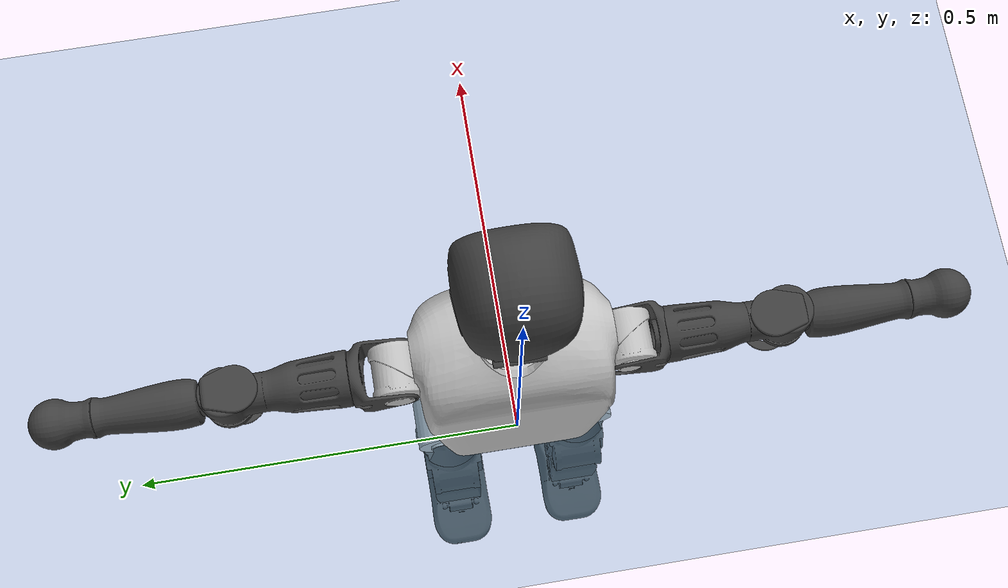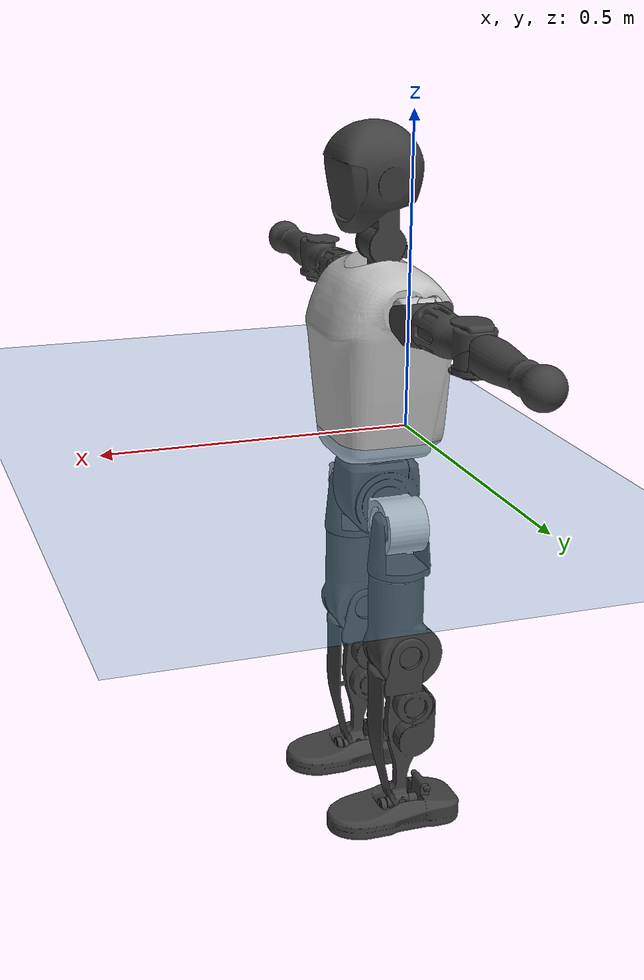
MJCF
<mujoco model="T1">
  <compiler angle="radian" assetdir="assets" balanceinertia="true" inertiafromgeom="false"/>

  <option timestep="0.005" density="1.2" viscosity="2e-05"/>

  <size nkey="1"/>

  <visual>
    <quality shadowsize="8192"/>
    <map shadowclip="0.5"/>
  </visual>

  <default>
    <default class="/">
      <joint armature="0.01" damping="0.01" frictionloss="0.1"/>
      <geom contype="0" conaffinity="0" group="1" solref="-1000 -80"/>
      <site size="0.01 0.005 0.005" group="5"/>
      <general forcelimited="true" biastype="affine" gainprm="25" biasprm="0 -25 -0.6"/>
      <default class="t1">
        <geom rgba="0.25 0.25 0.25 1"/>
        <default class="visual">
          <geom type="mesh" group="2"/>
        </default>
        <default class="collision">
          <geom group="3"/>
        </default>
        <default class="foot">
          <geom size="0.1115 0.05 0.015" type="box" condim="6" group="4" priority="1" solimp="0.015 1 0.015"/>
        </default>
        <default class="reward_collision_sphere">
          <geom group="5" rgba="1 0 0 1"/>
        </default>
      </default>
    </default>
  </default>

  <asset>
    <texture type="skybox" colorspace="auto" name="//unnamed_texture_0" builtin="gradient" rgb1="0.95 0.95 0.95" rgb2="0.95 0.95 0.95" width="100" height="600"/>
    <texture type="2d" colorspace="auto" name="texplane" builtin="checker" rgb1="0.345 0.575 0.748" rgb2="0.345 0.575 0.748" markrgb="1 1 1" width="512" height="512"/>
    <material name="MatPlane" class="/" texture="texplane" texuniform="true" texrepeat="2 2" specular="0.9"/>
    <mesh name="Trunk" class="/" file="Trunk.stl"/>
    <mesh name="H1" class="/" file="H1.stl"/>
    <mesh name="H2" class="/" file="H2.stl"/>
    <mesh name="AL1" class="/" file="AL1.stl"/>
    <mesh name="AL2" class="/" file="AL2.stl"/>
    <mesh name="AL3" class="/" file="AL3.stl"/>
    <mesh name="left_hand_link" class="/" file="left_hand_link.stl"/>
    <mesh name="AR1" class="/" file="AR1.stl"/>
    <mesh name="AR2" class="/" file="AR2.stl"/>
    <mesh name="AR3" class="/" file="AR3.stl"/>
    <mesh name="right_hand_link" class="/" file="right_hand_link.stl"/>
    <mesh name="Waist" class="/" file="Waist.stl"/>
    <mesh name="Hip_Pitch_Left" class="/" file="Hip_Pitch_Left.stl"/>
    <mesh name="Hip_Roll_Left" class="/" file="Hip_Roll_Left.stl"/>
    <mesh name="Hip_Yaw_Left" class="/" file="Hip_Yaw_Left.stl"/>
    <mesh name="Shank_Left" class="/" file="Shank_Left.stl"/>
    <mesh name="Ankle_Cross_Left" class="/" file="Ankle_Cross_Left.stl"/>
    <mesh name="left_foot_link" class="/" file="left_foot_link.stl"/>
    <mesh name="Hip_Pitch_Right" class="/" file="Hip_Pitch_Right.stl"/>
    <mesh name="Hip_Roll_Right" class="/" file="Hip_Roll_Right.stl"/>
    <mesh name="Hip_Yaw_Right" class="/" file="Hip_Yaw_Right.stl"/>
    <mesh name="Shank_Right" class="/" file="Shank_Right.stl"/>
    <mesh name="Ankle_Cross_Right" class="/" file="Ankle_Cross_Right.stl"/>
    <mesh name="right_foot_link" class="/" file="right_foot_link.stl"/>
  </asset>

  <worldbody>
    <geom name="floor" class="/" size="100 100 0.125" type="plane" group="0" material="MatPlane"/>
    <light name="toplight_shadow" class="/" pos="0 0 5" dir="0.0990148 0.0990148 -0.990148" type="directional" ambient="0.04 0.04 0.04" diffuse="0.55 0.55 0.55" specular="0.12 0.12 0.12"/>
    <light name="toplight_fill" class="/" pos="0 0 5" dir="0.0990148 0.0990148 -0.990148" type="directional" castshadow="false" ambient="0.04 0.04 0.04" diffuse="0.3 0.3 0.3" specular="0.08 0.08 0.08"/>
    <body name="trunk" childclass="t1" pos="-0.000502188 -6.29285e-07 0.00212312" quat="1 9.67319e-05 9.15298e-06 3.84132e-05">
      <inertial pos="0.0440289 -0.000688193 0.102689" quat="0.999956 0.00121178 -0.00930723 2.5829e-05" mass="7.74706" diaginertia="0.0287069 0.0408061 0.0453458"/>
      <joint name="//unnamed_joint_0" type="free" armature="0" damping="0" frictionloss="0"/>
      <geom name="//unnamed_geom_1" class="visual" rgba="0.76 0.76 0.76 1" mesh="Trunk"/>
      <geom name="//unnamed_geom_2" class="collision" size="0.0662558 0.0883411 0.132512" pos="0.0478724 0 0.116314" type="box"/>
      <geom name="//unnamed_geom_3" class="reward_collision_sphere" size="0.101592" pos="0.0478724 0 0.096928"/>
      <geom name="//unnamed_geom_4" class="reward_collision_sphere" size="0.0132512" pos="0.0478724 0.0750617 0"/>
      <geom name="//unnamed_geom_5" class="reward_collision_sphere" size="0.0132512" pos="0.0478724 -0.0750617 0"/>
      <geom name="//unnamed_geom_6" class="reward_collision_sphere" size="0.0132512" pos="0.0478724 0.0944894 0.17447"/>
      <geom name="//unnamed_geom_7" class="reward_collision_sphere" size="0.0132512" pos="0.0478724 -0.0944894 0.17447"/>
      <site name="imu" pos="0.0131871 -0.0124479 -0.00160528" size="0.00883411"/>
      <camera name="track" pos="0 -1.76616 0" quat="0.707107 0.707107 0 0" mode="trackcom"/>
      <camera name="ego_camera" pos="0.0973406 0 0.407098" quat="-0.5 -0.5 0.5 0.5"/>
      <body name="H1" pos="0.0493274 -0.0013413 0.235738" quat="1 -0.000218591 0.00013189 -1.20972e-05">
        <inertial pos="-0.000293978 -0.000439236 0.0566287" quat="0.761294 -0.0135164 -0.000985173 0.648265" mass="0.308907" diaginertia="8.09795e-05 0.000119989 0.000132372"/>
        <joint name="AAHead_yaw" pos="0 0 0" axis="-0.00022391 0.000596856 1" stiffness="0.0116548" range="-1.57769 1.59133" armature="0.00843583" damping="0.00478029" frictionloss="0.0928809"/>
        <geom name="//unnamed_geom_8" class="visual" mesh="H1"/>
        <body name="H2" pos="-0.000354659 -0.00272471 0.0601668" quat="1 -0.000106173 9.68787e-05 5.43332e-05">
          <inertial pos="0.00811066 0.00340546 0.0967137" quat="0.98816 0.10618 -0.0784015 -0.0782187" mass="0.452553" diaginertia="0.000657945 0.00105221 0.00149687"/>
          <joint name="Head_pitch" pos="0 0 0" axis="0.00502111 -0.999987 0.00126339" range="-1.21608 0.377768" armature="0.00778701" damping="0.00190046" frictionloss="0.0890174"/>
          <geom name="//unnamed_geom_9" class="visual" mesh="H2"/>
          <geom name="//unnamed_geom_10" class="collision" size="0.0706729" pos="0.00797874 0 0.106621"/>
          <geom name="//unnamed_geom_11" class="reward_collision_sphere" size="0.079507" pos="0.0159575 0 0.096928"/>
        </body>
      </body>
      <body name="AL1" pos="0.0461961 0.0952623 0.211718" quat="1 -3.90666e-05 0.000517092 0.000144758">
        <inertial pos="-0.000757524 0.0395853 0.00251475" quat="0.503777 0.494236 -0.505247 0.496655" mass="0.370798" diaginertia="0.000447261 0.000694827 0.000250136"/>
        <joint name="Left_Shoulder_Pitch" pos="0 0 0" axis="-0.00581536 0.999981 0.00213563" range="-3.35982 1.19191" armature="0.00838713" damping="0.00720361" frictionloss="0.0886423"/>
        <geom name="//unnamed_geom_12" class="visual" rgba="0.76 0.76 0.76 1" mesh="AL1"/>
        <body name="AL2" pos="0.000146018 0.0451746 -0.00132623" quat="0.999999 -0.00015237 0.000577579 0.00130953">
          <inertial pos="0.00268868 0.0328164 -0.00211772" quat="0.489596 0.508936 -0.488635 0.512363" mass="0.117612" diaginertia="0.000133534 0.000196529 0.000157861"/>
          <joint name="Left_Shoulder_Roll" pos="0 0 0" axis="-0.999994 0.00163976 0.00320047" range="-1.59953 1.75087" armature="0.00897677" damping="0" frictionloss="0.0912147"/>
          <geom name="//unnamed_geom_13" class="visual" mesh="AL2"/>
          <body name="AL3" pos="0.00209893 0.0566617 0.00124168" quat="0.999999 0.00117906 1.4484e-05 -6.77441e-05">
            <inertial pos="-0.000770282 0.0755847 -9.81039e-06" quat="0.709849 0.70428 0.00725001 -0.00718077" mass="0.726946" diaginertia="0.00427777 0.00714249 0.000546904"/>
            <joint name="Left_Elbow_Pitch" pos="0 0 0" axis="-0.00238299 -0.999997 -0.00058383" range="-2.27501 2.27675" armature="0.00910673" damping="0.0121273" frictionloss="0.0895934"/>
            <geom name="//unnamed_geom_14" class="visual" mesh="AL3"/>
            <geom name="//unnamed_geom_15" class="collision" size="0.0265023 0.0662558" pos="0 0.0441539 0" quat="0.707105 0.707108 0 0" type="cylinder"/>
            <geom name="//unnamed_geom_16" class="reward_collision_sphere" size="0.0318028"/>
            <body name="left_hand_link" pos="0.000202154 0.13294 0.00243931" quat="0.999999 -8.9774e-05 -0.000703683 -0.00111463">
              <inertial pos="-0.000349511 0.0968481 -0.00199756" quat="0.715628 0.698454 -0.00380218 -0.00487028" mass="0.217604" diaginertia="0.00256523 0.00425195 0.000177445"/>
              <joint name="Left_Elbow_Yaw" pos="0 0 0" axis="-0.0148728 0.00124252 0.999889" range="-2.44033 0.0391824" armature="0.0089919" damping="0.00463639" frictionloss="0.0999687"/>
              <geom name="//unnamed_geom_17" class="visual" mesh="left_hand_link"/>
              <geom name="//unnamed_geom_18" class="collision" size="0.0265023 0.0772984" pos="0 0.1148 0" quat="0.707105 0.707108 0 0" type="cylinder"/>
              <geom name="//unnamed_geom_19" class="reward_collision_sphere" size="0.0441705"/>
              <geom name="//unnamed_geom_20" class="reward_collision_sphere" size="0.0309194" pos="0 0.0971386 0"/>
              <geom name="//unnamed_geom_21" class="reward_collision_sphere" size="0.0309194" pos="0 0.189862 0"/>
            </body>
          </body>
        </body>
      </body>
      <body name="AR1" pos="0.0431609 -0.0909579 0.2118" quat="1 0.000267328 0.000459258 -0.000375954">
        <inertial pos="-0.000701464 -0.0389368 -0.000755014" quat="0.502814 0.496676 -0.504272 0.496186" mass="0.366616" diaginertia="0.000445491 0.000704417 0.000248969"/>
        <joint name="Right_Shoulder_Pitch" pos="0 0 0" axis="0.00158333 -0.999999 0.000560441" stiffness="0.0162503" range="-1.17493 3.32405" armature="0.00858757" damping="0.019618" frictionloss="0.0892133"/>
        <geom name="//unnamed_geom_22" class="visual" rgba="0.76 0.76 0.76 1" mesh="AR1"/>
        <body name="AR2" pos="-0.00282352 -0.0385061 0.000598432" quat="1 3.17778e-05 6.85127e-05 -0.000340589">
          <inertial pos="0.00184421 -0.0339522 -0.00130341" quat="0.511738 0.49055 -0.51224 0.484866" mass="0.10876" diaginertia="0.000124777 0.000178322 0.000152143"/>
          <joint name="Right_Shoulder_Roll" pos="0 0 0" axis="-0.999987 0.00362933 0.00360052" stiffness="0.00814326" range="-1.7308 1.5193" armature="0.00901499" damping="0.00469407" frictionloss="0.0770061"/>
          <geom name="//unnamed_geom_23" class="visual" mesh="AR2"/>
          <body name="AR3" pos="-0.000654633 -0.0507999 0.00220326" quat="1 9.11828e-05 -3.11965e-05 -4.28382e-05">
            <inertial pos="-0.000198118 -0.0743019 -0.000719639" quat="0.70917 0.704921 0.00847036 0.00962353" mass="0.697119" diaginertia="0.00412172 0.00695959 0.000536338"/>
            <joint name="Right_Elbow_Pitch" pos="0 0 0" axis="0.000759204 1 0.000419582" stiffness="0.0116945" range="-2.26905 2.27051" armature="0.00917996" damping="0.0121452" frictionloss="0.0999501"/>
            <geom name="//unnamed_geom_24" class="visual" mesh="AR3"/>
            <geom name="//unnamed_geom_25" class="collision" size="0.0265023 0.0662558" pos="0 -0.0441539 0" quat="0.707105 0.707108 0 0" type="cylinder"/>
            <geom name="//unnamed_geom_26" class="reward_collision_sphere" size="0.0318028"/>
            <body name="right_hand_link" pos="-0.00275942 -0.129063 -0.00142243" quat="1 0.000383743 1.40976e-05 7.5913e-05">
              <inertial pos="-0.00113344 -0.0969392 0.00333047" quat="0.712583 0.701531 -0.00265389 -0.0085611" mass="0.215923" diaginertia="0.00250928 0.00423859 0.000177559"/>
              <joint name="Right_Elbow_Yaw" pos="0 0 0" axis="-0.00130646 -8.55578e-05 0.999999" stiffness="0.00223116" range="-0.0445409 2.41849" armature="0.0101281" damping="0.00744945" frictionloss="0.088285"/>
              <geom name="//unnamed_geom_27" class="visual" mesh="right_hand_link"/>
              <geom name="//unnamed_geom_28" class="collision" size="0.0265023 0.0772984" pos="0 -0.1148 0" quat="0.707105 0.707108 0 0" type="cylinder"/>
              <geom name="//unnamed_geom_29" class="reward_collision_sphere" size="0.0441705"/>
              <geom name="//unnamed_geom_30" class="reward_collision_sphere" size="0.0309194" pos="0 -0.0971386 0"/>
              <geom name="//unnamed_geom_31" class="reward_collision_sphere" size="0.0309194" pos="0 -0.189862 0"/>
            </body>
          </body>
        </body>
      </body>
      <body name="Waist" pos="0.0500873 -0.0017158 -0.113913" quat="1 -9.47006e-05 1.03295e-05 -5.09358e-05">
        <inertial pos="0.00397339 -0.000771133 0.00652453" quat="0.983596 0.000282832 -0.180365 0.00260695" mass="1.76182" diaginertia="0.00169005 0.0026786 0.00390948"/>
        <joint name="Waist" pos="0 0 0" axis="-0.000395687 -0.00446125 0.99999" range="-1.51808 1.56587" armature="0.00787762" damping="0.0109232" frictionloss="0.089015"/>
        <geom name="//unnamed_geom_32" class="visual" mesh="Waist"/>
        <body name="Hip_Pitch_Left" pos="-0.00183064 0.0953159 -0.000666359" quat="0.999999 0.000673001 0.000458389 0.00090595">
          <inertial pos="-1.39996e-05 -0.00402161 -0.0174672" quat="0.975234 0.220711 0.0141576 0.00240782" mass="0.701582" diaginertia="0.000576831 0.000796565 0.00105242"/>
          <joint name="Left_Hip_Pitch" pos="0 0 0" axis="-0.000830137 0.999998 -0.00174837" stiffness="0.00716191" range="-1.7935 1.59929" armature="0.00885524" damping="0.0103666" frictionloss="0.0886123"/>
          <geom name="//unnamed_geom_33" class="visual" rgba="0.76 0.76 0.76 1" mesh="Hip_Pitch_Left"/>
          <body name="Hip_Roll_Left" pos="0.000213921 0.000110317 -0.0206103" quat="1 0.000611457 0.000772332 -7.34984e-05">
            <inertial pos="0.00120835 2.77207e-05 -0.0510009" quat="0.707864 -0.00464985 -0.00675869 0.706301" mass="0.267633" diaginertia="0.000564089 0.000794056 0.000429608"/>
            <joint name="Left_Hip_Roll" pos="0 0 0" axis="-1 0.000624701 0.000382469" range="-1.5883 0.220095" armature="0.00887073" damping="0.0120963" frictionloss="0.0977727"/>
            <geom name="//unnamed_geom_34" class="visual" mesh="Hip_Roll_Left"/>
            <geom name="//unnamed_geom_35" class="reward_collision_sphere" size="0.0485876"/>
            <body name="Hip_Yaw_Left" pos="0.00130375 -0.000858911 -0.081179" quat="1 0.000370544 -0.000292704 -0.000190529">
              <inertial pos="-0.00434216 -0.000740907 -0.0874784" quat="0.70514 -0.0388198 -0.0343212 0.707172" mass="1.48827" diaginertia="0.00825551 0.0131356 0.00223182"/>
              <joint name="Left_Hip_Yaw" pos="0 0 0" axis="-0.00747785 0.00654742 -0.999951" range="-0.998789 0.989248" armature="0.00885657" damping="0.0155931" frictionloss="0.0884086"/>
              <geom name="//unnamed_geom_36" class="visual" mesh="Hip_Yaw_Left"/>
              <geom name="//unnamed_geom_37" class="collision" size="0.0441705 0.0706729" type="cylinder"/>
              <body name="Shank_Left" pos="-0.0106916 0.000401918 -0.130846" quat="1 -4.54329e-05 0.000160412 -0.000268964">
                <inertial pos="-0.00535233 1.2679e-05 -0.12022" quat="0.997264 0.00630624 -0.0173512 0.0715838" mass="1.19515" diaginertia="0.0112012 0.0189866 0.00160742"/>
                <joint name="Left_Knee_Pitch" pos="0 0 0" axis="-0.00155132 0.999999 -9.36436e-05" range="-0.00997105 2.3324" armature="0.00849027" damping="0.0122347" frictionloss="0.0990324"/>
                <geom name="//unnamed_geom_38" class="visual" mesh="Shank_Left"/>
                <geom name="//unnamed_geom_39" class="collision" size="0.0441705 0.0662558" pos="0 0 -0.116314" type="cylinder"/>
                <geom name="//unnamed_geom_40" class="reward_collision_sphere" size="0.0574217"/>
                <body name="Ankle_Cross_Left" pos="-0.00115803 -0.000338024 -0.273038" quat="1 0.000375192 0.000284426 6.20147e-05">
                  <inertial pos="-0.00228791 0.000595093 -0.0104315" quat="0.440741 0.551211 0.551161 0.445124" mass="0.0514397" diaginertia="9.97131e-06 1.39472e-05 9.89616e-06"/>
                  <joint name="Left_Ankle_Pitch" pos="0 0 0" axis="0.00321071 0.999993 0.00208203" range="-0.920649 0.367818" armature="0.00858811" damping="0.00685732" frictionloss="0.099304"/>
                  <geom name="//unnamed_geom_41" class="visual" mesh="Ankle_Cross_Left"/>
                  <body name="left_foot_link" pos="0.00120247 6.87731e-05 -0.0150961" quat="1 -0.000216455 7.46232e-05 -0.000156429">
                    <inertial pos="0.00046105 -0.00257657 -0.00980499" quat="0.00109759 0.619434 -0.00176844 0.785046" mass="0.470417" diaginertia="0.000888764 0.00128004 0.0018497"/>
                    <joint name="Left_Ankle_Roll" pos="0 0 0" axis="-1 0.000407298 -4.96427e-06" range="-0.467328 0.447525" armature="0.00897089" damping="0.0130686" frictionloss="0.087018"/>
                    <geom name="//unnamed_geom_42" class="visual" mesh="left_foot_link"/>
                    <geom name="left_foot" class="foot" size="0.100954 0.0468621 0.0139564" pos="0.00797874 0 -0.0145392"/>
                    <geom name="//unnamed_geom_44" class="reward_collision_sphere" size="0.0459374" pos="0.00797874 0 -0.0145392"/>
                    <geom name="//unnamed_geom_45" class="reward_collision_sphere" size="0.0265023" pos="0.075798 -0.0203108 -0.0145392"/>
                    <geom name="//unnamed_geom_46" class="reward_collision_sphere" size="0.0265023" pos="-0.0558512 -0.0203108 -0.0145392"/>
                    <site name="left_foot" class="foot" pos="0.00797874 0 -0.0145392" size="0.00883411"/>
                  </body>
                </body>
              </body>
            </body>
          </body>
        </body>
        <body name="Hip_Pitch_Right" pos="0.00181278 -0.0933396 0.00178592" quat="1 0.000277095 -0.000646361 0.000361963">
          <inertial pos="0.000373255 0.00577081 -0.0146207" quat="0.971941 -0.234454 0.0125472 -0.0142719" mass="0.695055" diaginertia="0.000576834 0.000774714 0.00108309"/>
          <joint name="Right_Hip_Pitch" pos="0 0 0" axis="-0.00339484 -0.999957 -0.00866119" range="-1.57186 1.80398" armature="0.00979259" damping="0.012779" frictionloss="0.0918157"/>
          <geom name="//unnamed_geom_47" class="visual" rgba="0.76 0.76 0.76 1" mesh="Hip_Pitch_Right"/>
          <body name="Hip_Roll_Right" pos="0.00119602 -7.99425e-05 -0.0183459" quat="0.999999 -0.00140265 -0.0002075 -3.21978e-05">
            <inertial pos="0.00392333 -0.00082323 -0.0534898" quat="0.711191 -0.0022112 0.00229037 0.702992" mass="0.259278" diaginertia="0.000539021 0.000785154 0.000430669"/>
            <joint name="Right_Hip_Roll" pos="0 0 0" axis="-0.999983 0.0058339 -0.000716511" stiffness="0.00313728" range="-0.208144 1.61574" armature="0.0088661" damping="0.00336479" frictionloss="0.0887894"/>
            <geom name="//unnamed_geom_48" class="visual" mesh="Hip_Roll_Right"/>
            <geom name="//unnamed_geom_49" class="reward_collision_sphere" size="0.0485876"/>
            <body name="Hip_Yaw_Right" pos="0.000742728 -0.00186798 -0.0788096" quat="0.999999 -0.000575758 -0.00125055 -0.000598796">
              <inertial pos="-0.00398479 0.000605009 -0.0873329" quat="0.715911 -0.0365151 -0.0382551 0.696186" mass="1.53351" diaginertia="0.00886785 0.0144893 0.00229996"/>
              <joint name="Right_Hip_Yaw" pos="0 0 0" axis="0.000668285 -0.00173184 -0.999998" range="-1.01504 0.955108" armature="0.00891147" damping="0.0115548" frictionloss="0.0769974"/>
              <geom name="//unnamed_geom_50" class="visual" mesh="Hip_Yaw_Right"/>
              <geom name="//unnamed_geom_51" class="collision" size="0.0441705 0.0706729" type="cylinder"/>
              <body name="Shank_Right" pos="-0.0133532 0.00105266 -0.130486" quat="0.999999 -0.000609762 -0.000734197 0.000687985">
                <inertial pos="-0.00234287 0.00056091 -0.117757" quat="0.999273 0.000883038 -0.0245459 -0.0291674" mass="1.28644" diaginertia="0.0114402 0.0183606 0.00165395"/>
                <joint name="Right_Knee_Pitch" pos="0 0 0" axis="-0.00334612 -0.999994 0.0012455" stiffness="0.00262771" range="-2.31806 0.00551828" armature="0.00888943" damping="0.0137362" frictionloss="0.0880191"/>
                <geom name="//unnamed_geom_52" class="visual" mesh="Shank_Right"/>
                <geom name="//unnamed_geom_53" class="collision" size="0.0441705 0.0662558" pos="0 0 -0.116314" type="cylinder"/>
                <geom name="//unnamed_geom_54" class="reward_collision_sphere" size="0.0574217"/>
                <body name="Ankle_Cross_Right" pos="0.000771492 0.000170851 -0.272915" quat="0.999999 -0.000741067 -0.00086078 -0.000608259">
                  <inertial pos="-0.00301775 -0.000264956 -0.00720054" quat="0.443616 0.550499 0.551184 0.443116" mass="0.0476971" diaginertia="9.17443e-06 1.35166e-05 9.54724e-06"/>
                  <joint name="Right_Ankle_Pitch" pos="0 0 0" axis="0.0136611 -0.999901 -0.00339791" range="-0.343374 0.836005" armature="0.00978704" damping="0" frictionloss="0.0767244"/>
                  <geom name="//unnamed_geom_55" class="visual" mesh="Ankle_Cross_Right"/>
                  <body name="right_foot_link" pos="0.00224364 -0.00221018 -0.010531" quat="1 -0.000177272 0.000286769 -6.29434e-05">
                    <inertial pos="-0.00111412 -0.000901122 -0.0111993" quat="0.0032883 0.621464 -0.000640007 0.783435" mass="0.484048" diaginertia="0.000852083 0.00126982 0.00186059"/>
                    <joint name="Right_Ankle_Roll" pos="0 0 0" axis="-0.999924 0.00548103 -0.0110503" range="-0.385866 0.445062" armature="0.00790748" damping="0.00733934" frictionloss="0.088294"/>
                    <geom name="//unnamed_geom_56" class="visual" mesh="right_foot_link"/>
                    <geom name="right_foot" class="foot" size="0.0932012 0.0448328 0.0136196" pos="0.00797874 0 -0.0145392"/>
                    <geom name="//unnamed_geom_58" class="reward_collision_sphere" size="0.0353364"/>
                    <geom name="//unnamed_geom_59" class="reward_collision_sphere" size="0.0265023" pos="0.00797874 0 -0.0145392"/>
                    <geom name="//unnamed_geom_60" class="reward_collision_sphere" size="0.0265023" pos="0.075798 0.0203108 -0.0145392"/>
                    <geom name="//unnamed_geom_61" class="reward_collision_sphere" size="0.0265023" pos="-0.0558512 0.0203108 -0.0145392"/>
                    <site name="right_foot" class="foot" pos="0.00797874 0 -0.0145392" size="0.00883411"/>
                  </body>
                </body>
              </body>
            </body>
          </body>
        </body>
      </body>
    </body>
  </worldbody>

  <contact>
    <pair class="/" geom1="floor" geom2="left_foot" name="//unnamed_contact_0"/>
    <pair class="/" geom1="floor" geom2="right_foot" name="//unnamed_contact_1"/>
  </contact>

  <actuator>
    <general name="AAHead_yaw" class="/" joint="AAHead_yaw" forcerange="-6.1418 6.1418" gainprm="23.4117" biasprm="0 -23.4117 -0.514857"/>
    <general name="Head_pitch" class="/" joint="Head_pitch" forcerange="-6.07712 6.07712" gainprm="23.4117" biasprm="0 -23.4117 -0.514857"/>
    <general name="Left_Shoulder_Pitch" class="/" joint="Left_Shoulder_Pitch" forcerange="-15.6006 15.6006" gainprm="23.4117" biasprm="0 -23.4117 -0.514857"/>
    <general name="Left_Shoulder_Roll" class="/" joint="Left_Shoulder_Roll" forcerange="-15.9504 15.9504" gainprm="23.4117" biasprm="0 -23.4117 -0.514857"/>
    <general name="Left_Elbow_Pitch" class="/" joint="Left_Elbow_Pitch" forcerange="-17.364 17.364" gainprm="23.4117" biasprm="0 -23.4117 -0.514857"/>
    <general name="Left_Elbow_Yaw" class="/" joint="Left_Elbow_Yaw" forcerange="-16.5083 16.5083" gainprm="23.4117" biasprm="0 -23.4117 -0.514857"/>
    <general name="Right_Shoulder_Pitch" class="/" joint="Right_Shoulder_Pitch" forcerange="-16.1618 16.1618" gainprm="23.4117" biasprm="0 -23.4117 -0.514857"/>
    <general name="Right_Shoulder_Roll" class="/" joint="Right_Shoulder_Roll" forcerange="-15.7611 15.7611" gainprm="23.4117" biasprm="0 -23.4117 -0.514857"/>
    <general name="Right_Elbow_Pitch" class="/" joint="Right_Elbow_Pitch" forcerange="-16.4856 16.4856" gainprm="23.4117" biasprm="0 -23.4117 -0.514857"/>
    <general name="Right_Elbow_Yaw" class="/" joint="Right_Elbow_Yaw" forcerange="-17.2442 17.2442" gainprm="23.4117" biasprm="0 -23.4117 -0.514857"/>
    <general name="Waist" class="/" joint="Waist" forcerange="-26.8103 26.8103" gainprm="23.4117" biasprm="0 -23.4117 -0.514857"/>
    <general name="Left_Hip_Pitch" class="/" joint="Left_Hip_Pitch" forcerange="-35.7261 35.7261" gainprm="23.4117" biasprm="0 -23.4117 -0.514857"/>
    <general name="Left_Hip_Roll" class="/" joint="Left_Hip_Roll" forcerange="-25.4348 25.4348" gainprm="23.4117" biasprm="0 -23.4117 -0.514857"/>
    <general name="Left_Hip_Yaw" class="/" joint="Left_Hip_Yaw" forcerange="-25.6998 25.6998" gainprm="23.4117" biasprm="0 -23.4117 -0.514857"/>
    <general name="Left_Knee_Pitch" class="/" joint="Left_Knee_Pitch" forcerange="-57.3398 57.3398" gainprm="23.4117" biasprm="0 -23.4117 -0.514857"/>
    <general name="Left_Ankle_Pitch" class="/" joint="Left_Ankle_Pitch" forcerange="-17.08 17.08" gainprm="23.4117" biasprm="0 -23.4117 -0.514857"/>
    <general name="Left_Ankle_Roll" class="/" joint="Left_Ankle_Roll" forcerange="-13.4117 13.4117" gainprm="23.4117" biasprm="0 -23.4117 -0.514857"/>
    <general name="Right_Hip_Pitch" class="/" joint="Right_Hip_Pitch" forcerange="-43.7203 43.7203" gainprm="23.4117" biasprm="0 -23.4117 -0.514857"/>
    <general name="Right_Hip_Roll" class="/" joint="Right_Hip_Roll" forcerange="-25.3533 25.3533" gainprm="23.4117" biasprm="0 -23.4117 -0.514857"/>
    <general name="Right_Hip_Yaw" class="/" joint="Right_Hip_Yaw" forcerange="-25.658 25.658" gainprm="23.4117" biasprm="0 -23.4117 -0.514857"/>
    <general name="Right_Knee_Pitch" class="/" joint="Right_Knee_Pitch" forcerange="-55.3174 55.3174" gainprm="23.4117" biasprm="0 -23.4117 -0.514857"/>
    <general name="Right_Ankle_Pitch" class="/" joint="Right_Ankle_Pitch" forcerange="-17.6427 17.6427" gainprm="23.4117" biasprm="0 -23.4117 -0.514857"/>
    <general name="Right_Ankle_Roll" class="/" joint="Right_Ankle_Roll" forcerange="-11.9517 11.9517" gainprm="23.4117" biasprm="0 -23.4117 -0.514857"/>
  </actuator>

  <sensor>
    <gyro site="imu" name="imu_angular_velocity"/>
    <velocimeter site="imu" name="imu_linear_velocity"/>
    <framelinvel objtype="site" objname="left_foot" name="left_foot_global_linear_velocity"/>
    <framelinvel objtype="site" objname="right_foot" name="right_foot_global_linear_velocity"/>
  </sensor>

  <keyframe>
    <key name="home" qpos="0 0 0.6385 1 0 0 0 0 0 0 1.4 0 -0.4 0 -1.4 0 0.4 0 -0.4 0 0 0.8 -0.4 0 0.4 0 0 -0.8 0.4 0"/>
  </keyframe>
</mujoco>
